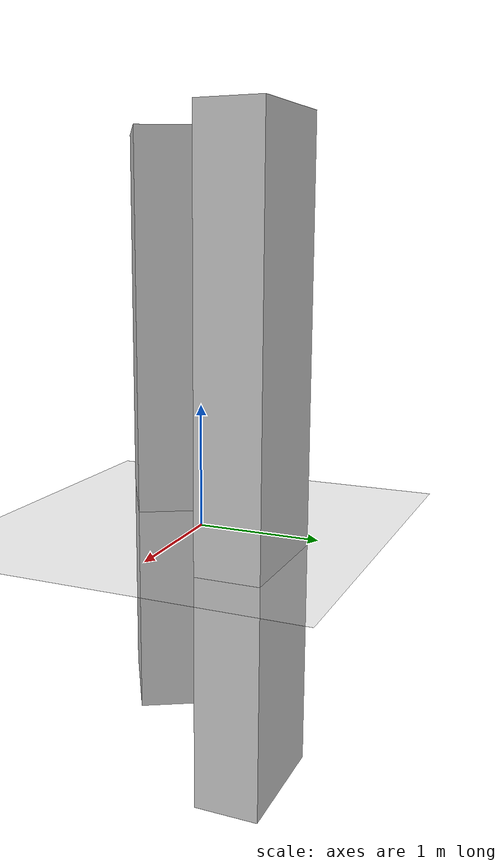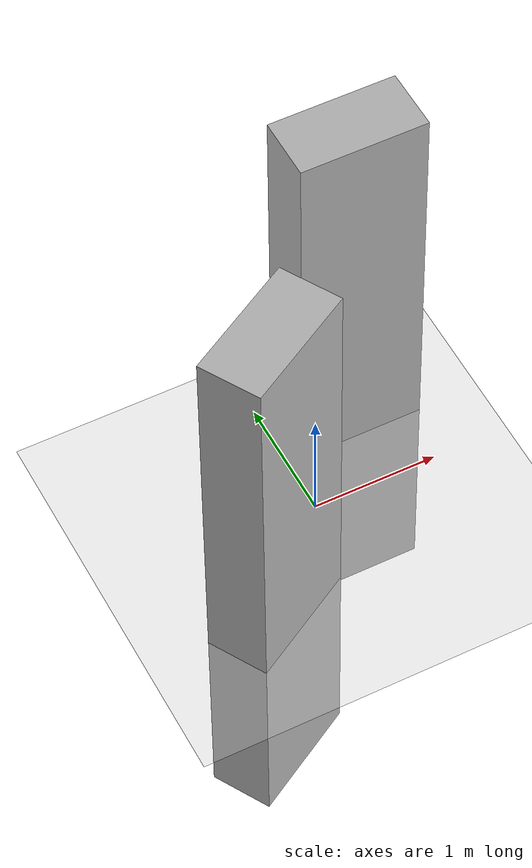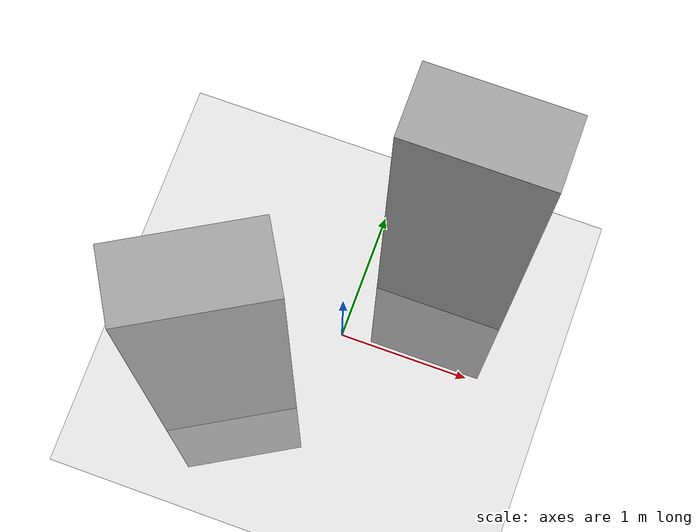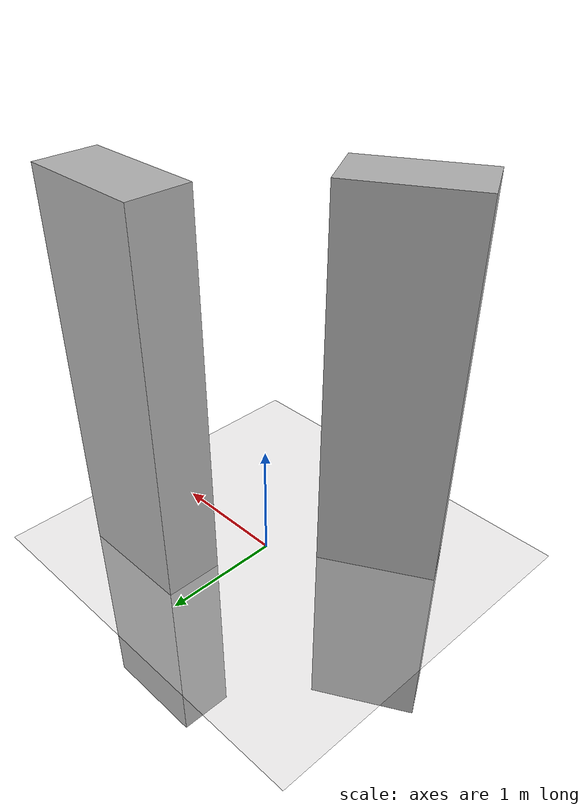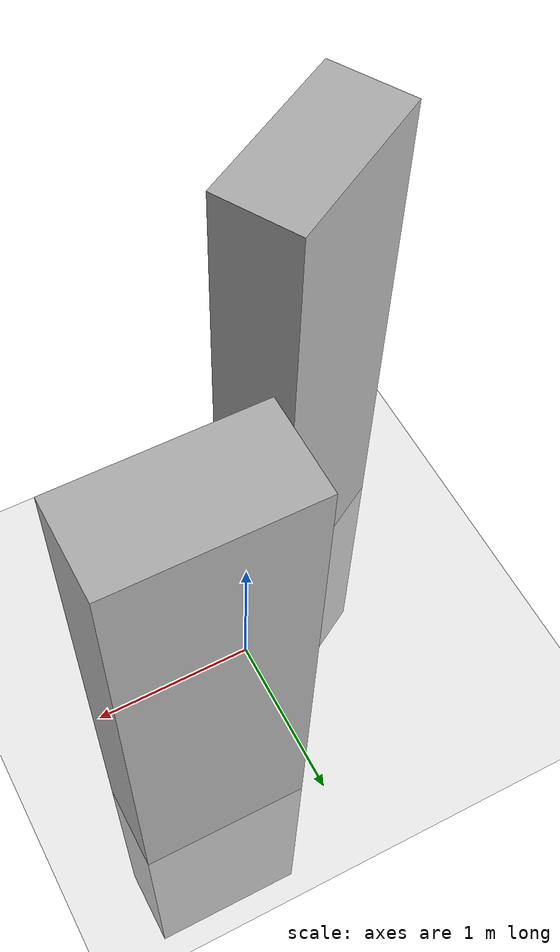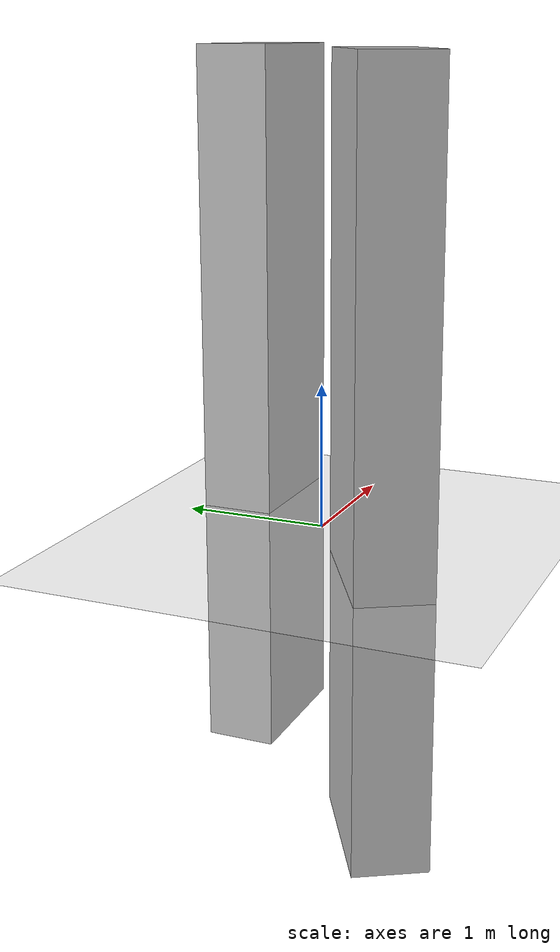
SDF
<sdf version='1.9'>
  <world name='panda_impedance_world'>
    <physics name='1ms' type='ignored'>
      <max_step_size>0.001</max_step_size>
      <real_time_factor>1</real_time_factor>
      <real_time_update_rate>1000</real_time_update_rate>
    </physics>
    <plugin name='gz::sim::systems::Physics' filename='ignition-gazebo-physics-system'/>
    <plugin name='gz::sim::systems::UserCommands' filename='ignition-gazebo-user-commands-system'/>
    <plugin name='gz::sim::systems::SceneBroadcaster' filename='ignition-gazebo-scene-broadcaster-system'/>
    <plugin name='gz::sim::systems::Contact' filename='ignition-gazebo-contact-system'/>
    <gravity>0 0 -9.8</gravity>
    <magnetic_field>6e-06 2.3e-05 -4.2e-05</magnetic_field>
    <atmosphere type='adiabatic'/>
    <scene>
      <ambient>0.4 0.4 0.4 1</ambient>
      <background>0.7 0.7 0.7 1</background>
      <shadows>true</shadows>
    </scene>
    <model name='ground_plane'>
      <static>true</static>
      <link name='link'>
        <collision name='collision'>
          <geometry>
            <plane>
              <normal>0 0 1</normal>
              <size>100 100</size>
            </plane>
          </geometry>
          <surface>
            <friction>
              <ode/>
            </friction>
            <bounce/>
            <contact/>
          </surface>
        </collision>
        <visual name='visual'>
          <geometry>
            <plane>
              <normal>0 0 1</normal>
              <size>100 100</size>
            </plane>
          </geometry>
          <material>
            <ambient>0.8 0.8 0.8 1</ambient>
            <diffuse>0.8 0.8 0.8 1</diffuse>
            <specular>0.8 0.8 0.8 1</specular>
          </material>
        </visual>
        <pose>0 0 0 0 -0 0</pose>
        <inertial>
          <pose>0 0 0 0 -0 0</pose>
          <mass>1</mass>
          <inertia>
            <ixx>1</ixx>
            <ixy>0</ixy>
            <ixz>0</ixz>
            <iyy>1</iyy>
            <iyz>0</iyz>
            <izz>1</izz>
          </inertia>
        </inertial>
        <enable_wind>false</enable_wind>
      </link>
      <pose>0 0 0 0 -0 0</pose>
      <self_collide>false</self_collide>
    </model>
    <model name='box_1_1_1'>
      <pose>0.622676 0.701382 0.695561 2e-06 -4e-06 -1.8e-05</pose>
      <link name='box_link'>
        <inertial>
          <mass>500000</mass>
          <inertia>
            <ixx>1052080</ixx>
            <ixy>0</ixy>
            <ixz>0</ixz>
            <iyy>1083330</iyy>
            <iyz>0</iyz>
            <izz>52083.300000000003</izz>
          </inertia>
          <pose>0 0 0 0 -0 0</pose>
        </inertial>
        <collision name='box_collision'>
          <geometry>
            <box>
              <size>1 0.5 5</size>
            </box>
          </geometry>
          <surface>
            <friction>
              <ode/>
            </friction>
            <bounce/>
            <contact/>
          </surface>
        </collision>
        <visual name='box_visual'>
          <geometry>
            <box>
              <size>1 0.5 5</size>
            </box>
          </geometry>
          <material>
            <ambient>0.3 0.3 0.3 1</ambient>
            <diffuse>0.7 0.7 0.7 1</diffuse>
            <specular>1 1 1 1</specular>
          </material>
        </visual>
        <pose>0 0 0 0 -0 0</pose>
        <enable_wind>false</enable_wind>
      </link>
      <static>false</static>
      <self_collide>false</self_collide>
    </model>
    <model name='box_2'>
      <pose>-0.69333 -0.686359 0.685888 8e-06 -1e-06 0.5236</pose>
      <link name='box_link'>
        <inertial>
          <mass>500000</mass>
          <inertia>
            <ixx>1052083.3300000001</ixx>
            <ixy>0</ixy>
            <ixz>0</ixz>
            <iyy>1083333.3300000001</iyy>
            <iyz>0</iyz>
            <izz>52083.330000000002</izz>
          </inertia>
          <pose>0 0 0 0 0 0</pose>
        </inertial>
        <collision name='box_collision'>
          <geometry>
            <box>
              <size>1 0.5 5</size>
            </box>
          </geometry>
          <surface>
            <friction>
              <ode/>
            </friction>
            <bounce/>
            <contact/>
          </surface>
        </collision>
        <visual name='box_visual'>
          <geometry>
            <box>
              <size>1 0.5 5</size>
            </box>
          </geometry>
          <material>
            <ambient>0.3 0.3 0.3 1</ambient>
            <diffuse>0.7 0.7 0.7 1</diffuse>
            <specular>1 1 1 1</specular>
          </material>
        </visual>
        <pose>0 0 0 0 -0 0</pose>
        <enable_wind>false</enable_wind>
      </link>
      <static>false</static>
      <self_collide>false</self_collide>
    </model>
    <light name='sun' type='directional'>
      <pose>0 0 10 0 -0 0</pose>
      <cast_shadows>true</cast_shadows>
      <intensity>1</intensity>
      <direction>-0.5 0.1 -0.9</direction>
      <diffuse>0.8 0.8 0.8 1</diffuse>
      <specular>0.2 0.2 0.2 1</specular>
      <attenuation>
        <range>1000</range>
        <linear>0.01</linear>
        <constant>0.90000000000000002</constant>
        <quadratic>0.001</quadratic>
      </attenuation>
      <spot>
        <inner_angle>0</inner_angle>
        <outer_angle>0</outer_angle>
        <falloff>0</falloff>
      </spot>
    </light>
  </world>
</sdf>
